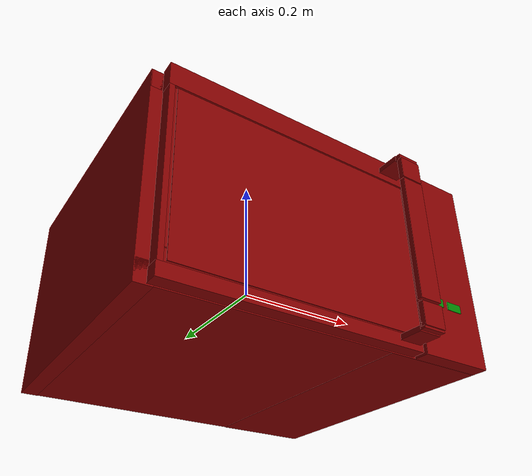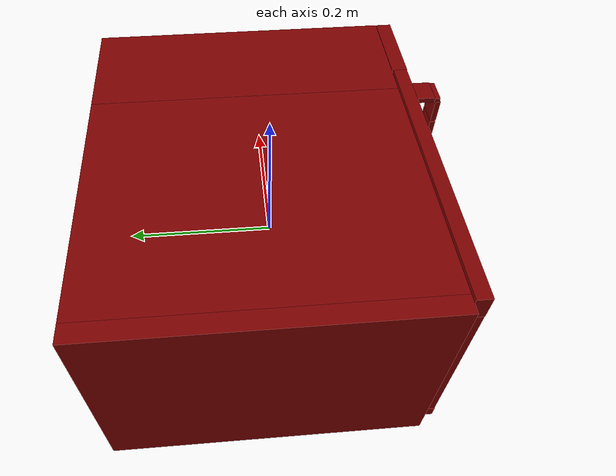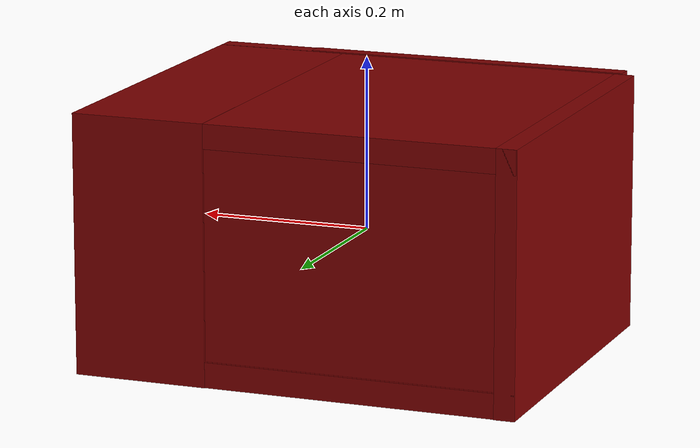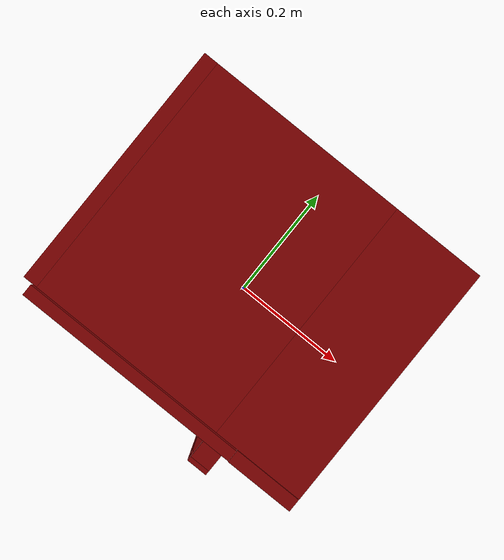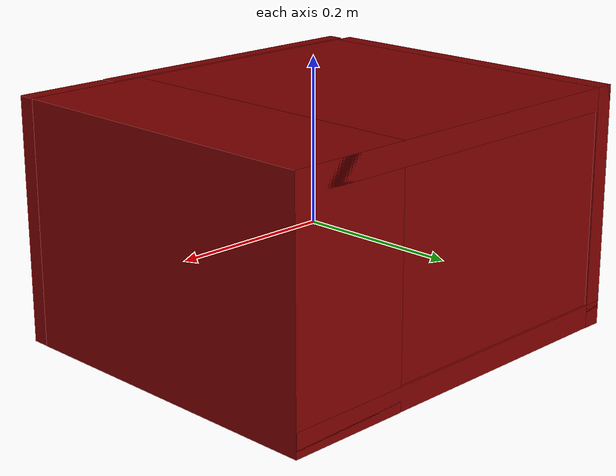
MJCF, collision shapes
<mujoco model="model">
  <compiler angle="radian"/>
  <asset>
    <mesh file="visuals/door.obj" name="door_vis"/>
    <mesh file="visuals/door_Clear.obj" name="door_Clear_vis"/>
    <mesh file="visuals/Body001.obj" name="Body001_vis"/>
    <mesh file="visuals/Disc001.obj" name="Disc001_vis"/>
    <texture file="visuals/T_BC001.png" name="Body001_material" type="2d"/>
    <material name="Body001_material" rgba="1 1 1 1.0" texture="Body001_material" shininess="0.5" specular="0.3103448502657381"/>
    <texture file="visuals/T_BC001.png" name="door_material" type="2d"/>
    <material name="door_material" rgba="1 1 1 1.0" texture="door_material" shininess="0.5" specular="0.3103448502657381"/>
    <texture file="visuals/T_BC001.png" name="door_Clear_material" type="2d"/>
    <material name="door_Clear_material" rgba="1 1 1 0.800000011920929" texture="door_Clear_material" shininess="0.5" specular="0.3103448502657381"/>
    <texture file="visuals/T_BC001.png" name="Disc001_material" type="2d"/>
    <material name="Disc001_material" rgba="1 1 1 1.0" texture="Disc001_material" shininess="0.5" specular="0.3103448502657381"/>
  </asset>
  <default>
    <default class="visual">
      <geom conaffinity="0" contype="0" group="1" type="mesh"/>
    </default>
    <default class="collision">
      <geom group="0" rgba="0.5 0 0 0.5"/>
    </default>
    <default class="spawn">
      <geom group="0" rgba="1 1 1 0.5" contype="0" conaffinity="0"/>
      <site group="0" rgba="1 1 1 0.5"/>
    </default>
    <default class="region">
      <geom group="1" conaffinity="0" contype="0" rgba="0 1 0 0"/>
    </default>
  </default>
  <worldbody>
    <body>
      <body name="object">
        <geom class="collision" type="box" pos="0.210789 -0.211204 -0.054266" size="0.01317546609789133 0.0005261290352791548 0.0060850814916193485" quat="1.0 0.0 0.0 0.0" name="start_button" rgba="0.0 0.5 0 0.5"/>
        <geom class="collision" type="box" pos="0.175918 -0.211204 -0.053443" size="0.01317546609789133 0.0005261290352791548 0.0060850814916193485" quat="1.0 0.0 0.0 0.0" name="stop_button" rgba="0.0 0.5 0 0.5"/>
        <geom class="collision" type="box" pos="-0.066519 -0.017917 -0.102627" size="0.11959520727396011 0.11959520727396011 0.00042977306293323636" quat="1.0 0.0 0.0 0.0" name="tray" rgba="0 1 0 0.5"/>
        <geom mesh="Body001_vis" type="mesh" solimp="0.998 0.998 0.001" solref="0.001 1" density="100" friction="0.95 0.3 0.1" class="visual" material="Body001_material"/>
        <geom class="collision" type="box" pos="0.000030 0.022623 0.147738" size="0.25820857286453247 0.21042445302009583 0.014117722399532795" quat="1.0 0.0 0.0 0.0"/>
        <geom class="collision" type="box" pos="0.000030 0.022623 -0.122561" size="0.25820857286453247 0.21042445302009583 0.014626357704401016" quat="1.0 0.0 0.0 0.0"/>
        <geom class="collision" type="box" pos="-0.247147 0.022623 0.012171" size="0.012021834030747414 0.21042445302009583 0.14973342418670654" quat="1.0 0.0 0.0 0.0"/>
        <geom class="collision" type="box" pos="0.180930 0.022623 0.012171" size="0.07805979251861572 0.21042445302009583 0.14973343908786774" quat="1.0 0.0 0.0 0.0"/>
        <geom class="collision" type="box" pos="-0.066746 0.196121 0.013173" size="0.1694858968257904 0.0345124788582325 0.1207183226943016" quat="1.0 0.0 0.0 0.0"/>
        <geom class="collision" type="box" pos="0.201135 -0.199292 0.012171" size="0.05766458436846733 0.01088749896734953 0.14973367750644684" quat="1.0 0.0 0.0 0.0"/>
        <body name="door">
          <joint axis="0.0 0.0 1.0" pos="-0.249771 -0.199903 0.008552" limited="true" name="microjoint" range="-1.5707963267948966 0.0" type="hinge" damping="1" frictionloss="1" armature=".01" stiffness="0.05"/>
          <geom mesh="door_vis" type="mesh" solimp="0.998 0.998 0.001" solref="0.001 1" density="100" friction="0.95 0.3 0.1" class="visual" material="door_material"/>
          <geom class="collision" type="box" pos="-0.050335 -0.199617 0.145308" size="0.19342300295829773 0.00953358318656683 0.01733875274658203" quat="1.0 0.0 0.0 0.0"/>
          <geom class="collision" type="box" pos="-0.053322 -0.199617 -0.127169" size="0.191057488322258 0.009533612988889217 0.009686951525509357" quat="1.0 0.0 0.0 0.0"/>
          <geom class="collision" type="box" pos="-0.239563 -0.199617 0.004327" size="0.0037130718119442463 0.009533603675663471 0.12363966554403305" quat="1.0 0.0 0.0 0.0"/>
          <geom class="collision" type="box" pos="-0.047950 -0.197172 -0.106867" size="0.18710340559482574 0.008143973536789417 0.009940880350768566" quat="1.0 0.0 0.0 0.0"/>
          <geom class="collision" type="box" pos="-0.220139 -0.197172 0.020292" size="0.014527391642332077 0.008144000545144081 0.11901064962148666" quat="1.0 0.0 0.0 0.0"/>
          <geom class="collision" type="box" pos="-0.035310 -0.197172 0.119194" size="0.1739746779203415 0.008143975399434566 0.009182482957839966" quat="1.0 0.0 0.0 0.0"/>
          <geom class="collision" type="box" pos="0.117879 -0.197172 0.014727" size="0.021255847066640854 0.008143959566950798 0.11084962636232376" quat="1.0 0.0 0.0 0.0"/>
          <geom class="collision" type="box" pos="0.115023 -0.226045 0.141851" size="0.017390556633472443 0.01654268242418766 0.003893505549058318" quat="1.0 0.0 0.0 0.0"/>
          <geom class="collision" type="box" pos="0.115023 -0.248386 0.120620" size="0.017390556633472443 0.003893508343026042 0.01672578603029251" quat="1.0 0.0 0.0 0.0"/>
          <geom class="collision" type="box" pos="0.115023 -0.246535 0.139876" size="0.017390556633472443 0.003893529996275902 0.004415370523929596" quat="1.0 0.0 0.0 0.0"/>
          <geom class="collision" type="box" pos="0.115023 -0.248386 -0.106109" size="0.017390556633472443 0.003893508343026042 0.01672578603029251" quat="1.0 0.0 0.0 0.0"/>
          <geom class="collision" type="box" pos="0.115023 -0.226045 -0.124130" size="0.017390556633472443 0.01654268242418766 0.003893505549058318" quat="1.0 0.0 0.0 0.0"/>
          <geom class="collision" type="box" pos="0.115023 -0.246535 -0.121839" size="0.017390556633472443 0.0038935220800340176 0.004415370523929596" quat="1.0 0.0 0.0 0.0"/>
          <geom class="collision" type="box" pos="0.115023 -0.248386 0.008096" size="0.017390556633472443 0.0038935202173888683 0.09348534792661667" quat="1.0 0.0 0.0 0.0" name="door_handle"/>
          <body name="door_Clear">
            <geom mesh="door_Clear_vis" type="mesh" solimp="0.998 0.998 0.001" solref="0.001 1" density="100" friction="0.95 0.3 0.1" class="visual" material="door_Clear_material"/>
            <geom class="collision" type="box" pos="-0.045421 -0.205174 0.007039" size="0.18542185425758362 0.0018394013168290257 0.12053621560335159" quat="1.0 0.0 0.0 0.0"/>
          </body>
        </body>
        <body name="Disc001">
          <joint axis="0.0 0.0 -1.0" pos="-0.065965 -0.018074 -0.105125" limited="false" name="Disc001_joint" range="0 360" type="hinge" damping="1" frictionloss="1" armature=".01" stiffness="0.05"/>
          <geom mesh="Disc001_vis" type="mesh" solimp="0.998 0.998 0.001" solref="0.001 1" density="100" friction="0.95 0.3 0.1" class="visual" material="Disc001_material"/>
          <geom class="collision" type="cylinder" pos="-0.066519 -0.017917 -0.105292" size="0.11959520727396011 0.0013973484747111797" quat="1.0 0.0 0.0 0.0"/>
        </body>
        <geom class="region" name="reg_main" type="box" pos="-1.000000000001e-06 0.020908999999999983 0.0" size="0.26034999999999997 0.231204 0.162955"/>
        <geom class="region" name="reg_int" type="box" pos="-0.0660975 -0.011893999999999988 0.012270500000000004" size="0.1658555 0.170792 0.11682250000000001"/>
      </body>
    </body>
  </worldbody>
  <actuator>
    <motor name="microjoint_actuator" joint="microjoint" gear="10"/>
    <motor name="Disc001_joint_actuator" joint="Disc001_joint" gear="10"/>
  </actuator>
</mujoco>
